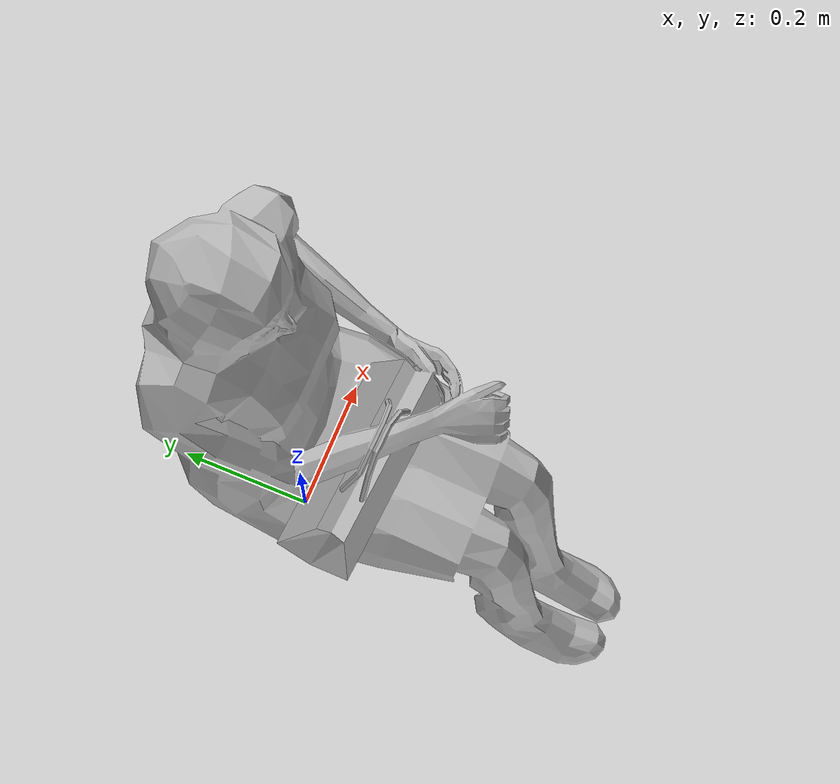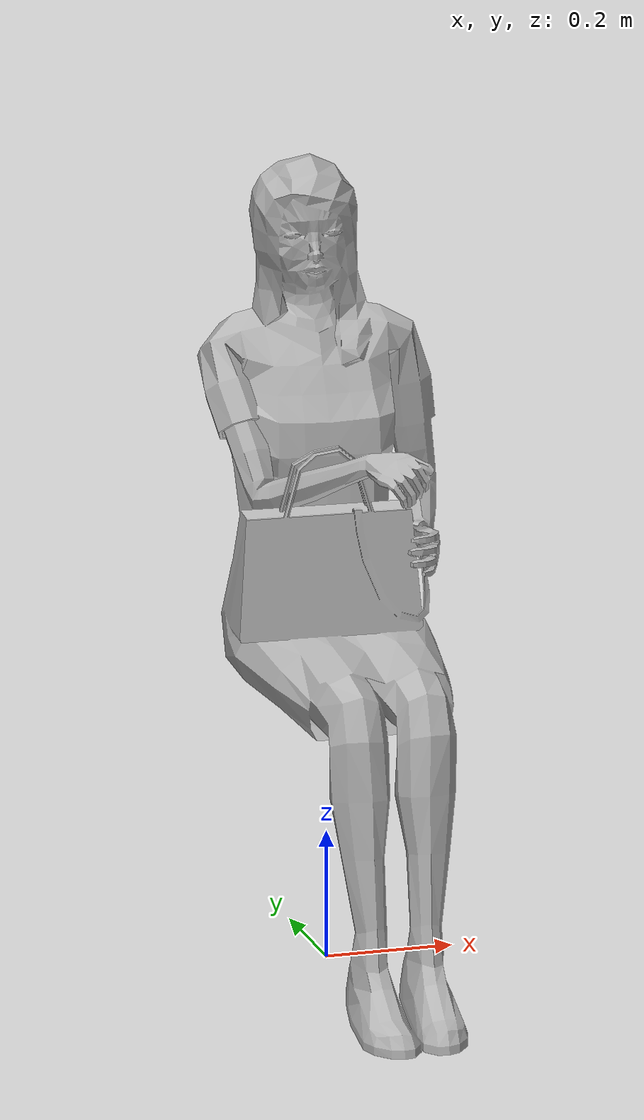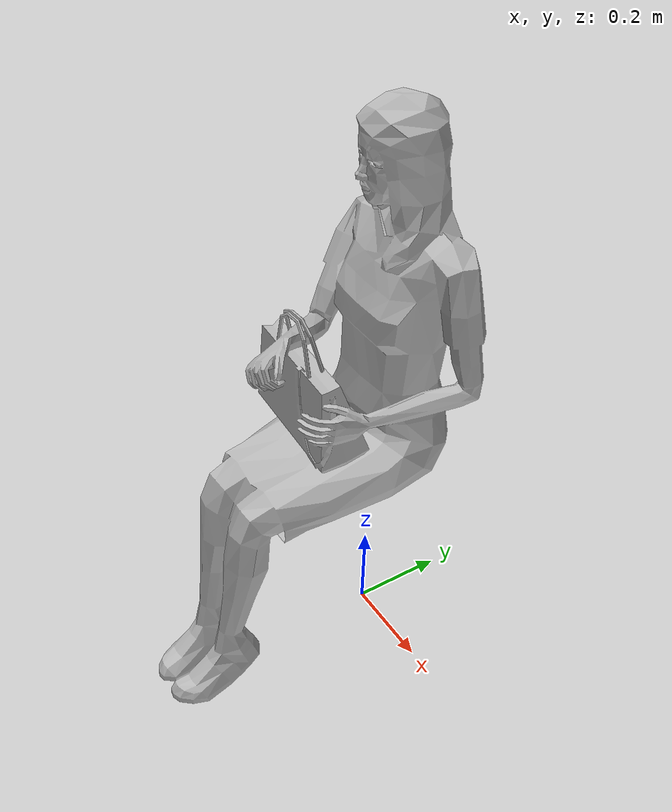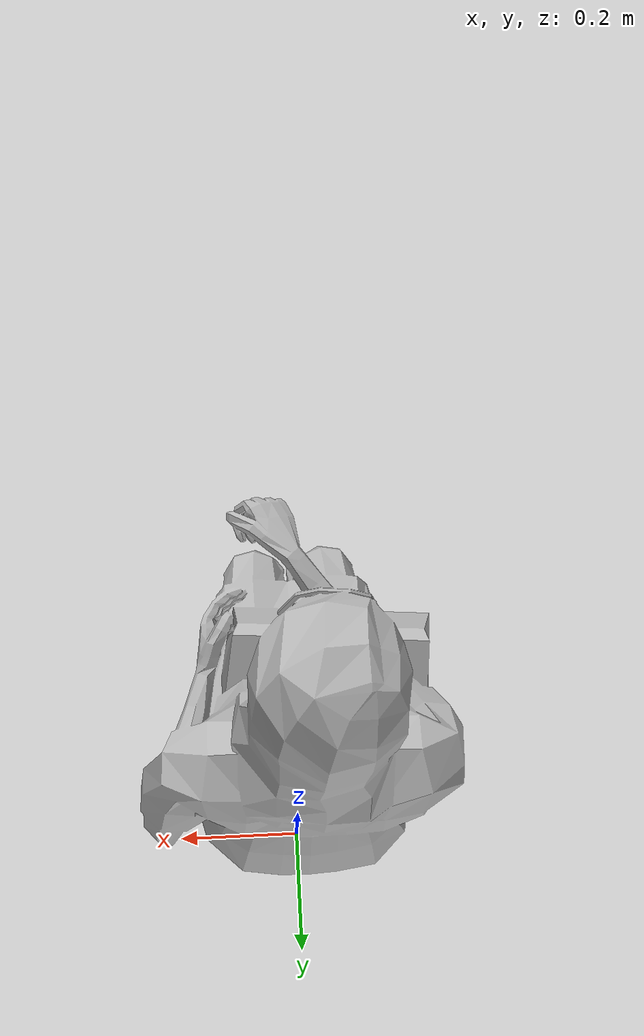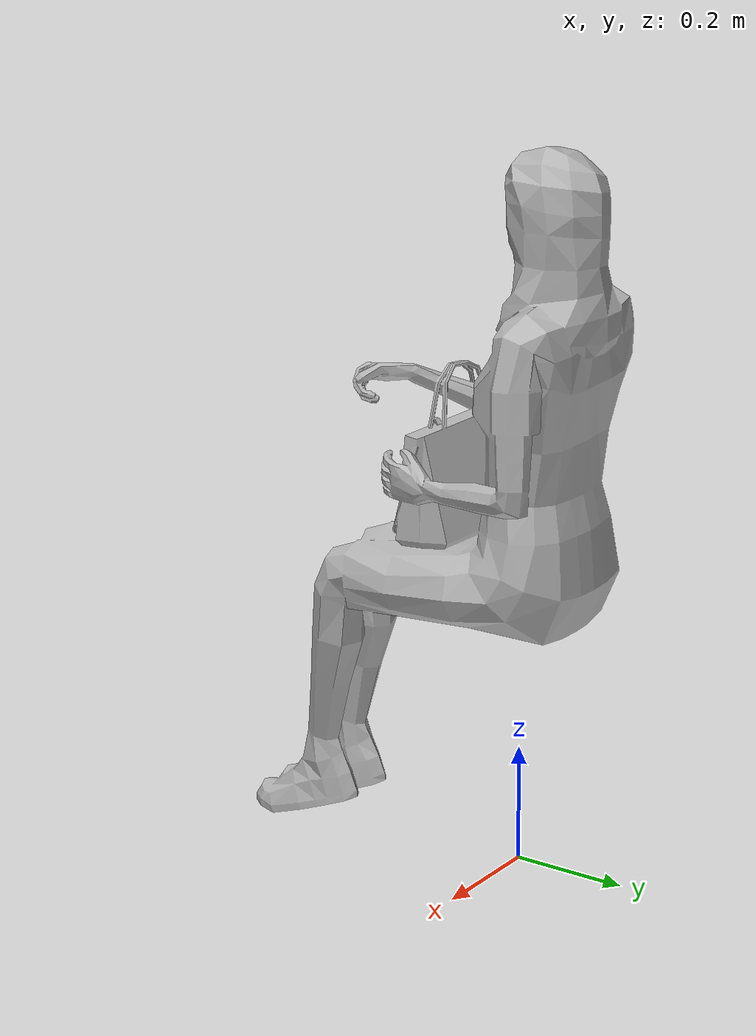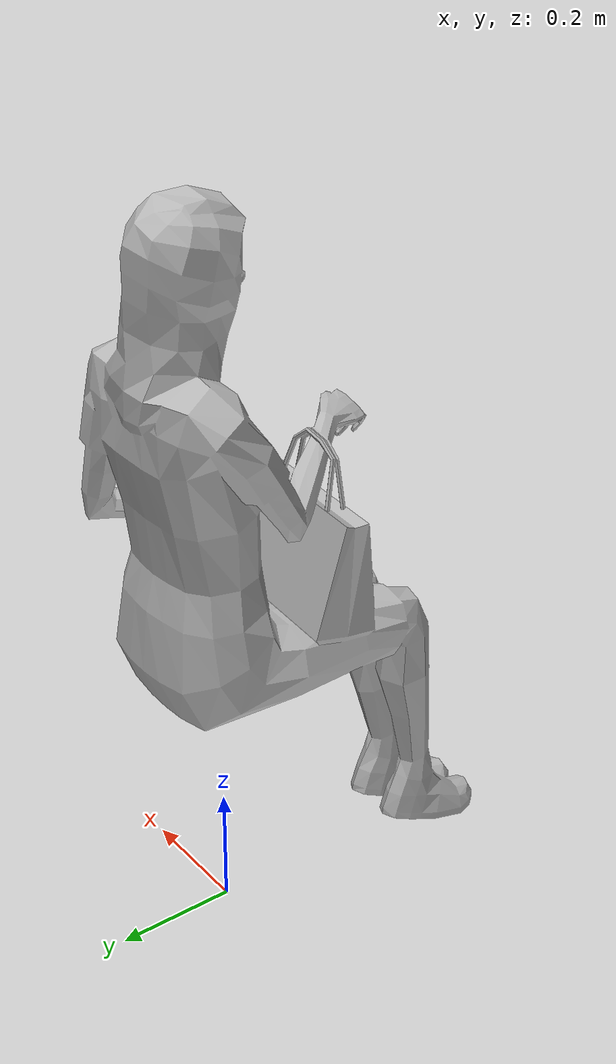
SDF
<?xml version='1.0' encoding='utf-8'?>
<sdf version="1.6">
  <model name="FemaleVisitorSit">
   <static>true</static>
    <link name="body">
      <pose>0 0 0 0 0 0</pose>

      <visual name="visual">
        <geometry>
          <mesh>
            <uri>model://FemaleVisitorSit/meshes/FemaleVisitorSit.obj</uri>
          </mesh>
        </geometry>
      </visual>

      <collision name="collision">
        <geometry>
          <mesh>
            <uri>model://FemaleVisitorSit/meshes/FemaleVisitorSit_Col.obj</uri>
          </mesh>
        </geometry>
      </collision>

    </link>
  </model>
</sdf>
